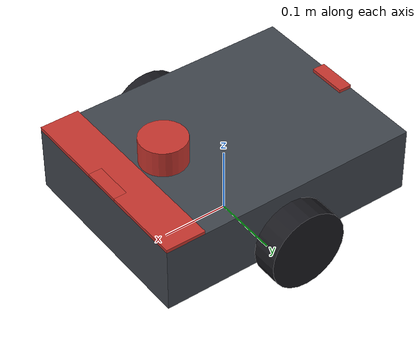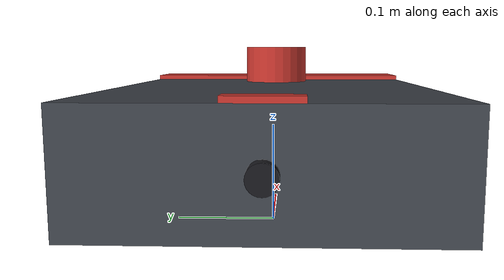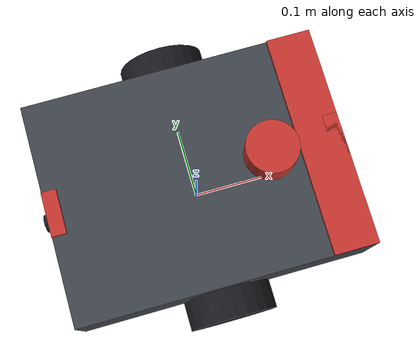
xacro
<?xml version="1.0"?>
<robot xmlns:xacro="http://www.ros.org/wiki/xacro" name="mini_bot">

  <xacro:arg name="namespace" default=""/>
  <xacro:arg name="prefix"    default=""/>
  <xacro:property name="ns"     value="$(arg namespace)"/>
  <xacro:property name="prefix" value="$(arg prefix)"/>
  <!-- Con namespace vacío los topics quedan /scan; con namespace, /robot_a/scan -->
  <xacro:property name="tns" value="${'/' + ns if ns else ''}"/>

  <xacro:include filename="$(find mini_bot)/urdf/inertials.xacro"/>

  <!-- Medidas del robot, en un solo sitio -->
  <xacro:property name="base_x"      value="0.40"/>
  <xacro:property name="base_y"      value="0.30"/>
  <xacro:property name="base_z"      value="0.10"/>
  <xacro:property name="base_mass"   value="5.0"/>
  <xacro:property name="wheel_r"     value="0.06"/>
  <xacro:property name="wheel_l"     value="0.04"/>
  <xacro:property name="wheel_mass"  value="0.5"/>
  <xacro:property name="wheel_sep"   value="0.34"/>
  <xacro:property name="caster_r"    value="0.03"/>

  <material name="body_grey"><color rgba="0.25 0.27 0.30 1.0"/></material>
  <material name="accent_red"><color rgba="0.78 0.21 0.18 1.0"/></material>
  <material name="dark"><color rgba="0.10 0.10 0.12 1.0"/></material>

  <!-- ====================== PREÁMBULO 1: GEOMETRÍA ============================ -->
  <!-- PASOS 1 a 3. Después de cada uno, relanza display.launch.py. -->

  <!-- base_footprint: link vacío a ras de suelo. Es el frame fijo de RViz. -->
  <link name="${prefix}base_footprint"/>

  <!-- base_link: la caja. Patrón de todo link: visual + collision + inertial. -->
  <link name="${prefix}base_link">
    <visual>
      <origin xyz="0 0 0" rpy="0 0 0"/>
      <geometry><box size="${base_x} ${base_y} ${base_z}"/></geometry>
      <material name="body_grey"/>
    </visual>
    <visual>
      <origin xyz="${base_x/2 - 0.03} 0 ${base_z/2 + 0.0025}" rpy="0 0 0"/>
      <geometry><box size="0.06 ${base_y} 0.005"/></geometry>
      <material name="accent_red"/>
    </visual>
    <collision>
      <origin xyz="0 0 0" rpy="0 0 0"/>
      <geometry><box size="${base_x} ${base_y} ${base_z}"/></geometry>
    </collision>
    <xacro:box_inertia m="${base_mass}" x="${base_x}" y="${base_y}" z="${base_z}"/>
  </link>

  <joint name="base_joint" type="fixed">
    <parent link="${prefix}base_footprint"/>
    <child  link="${prefix}base_link"/>
    <!-- PASO 1: con este origen, la caja queda a medias bajo el suelo. El de debajo la eleva
         hasta el eje de las ruedas. -->
    <origin xyz="0 0 ${wheel_r + base_z/2 - 0.02}" rpy="0 0 0"/>
  </joint>

  <!-- PASO 2: las ruedas. Una macro, instanciada dos veces: 'reflect' vale 1 (izquierda)
       o -1 (derecha) y pone cada rueda a un lado con el mismo código. -->
  <xacro:macro name="wheel" params="side reflect">
    <link name="${prefix}${side}_wheel_link">
      <visual>
        <origin xyz="0 0 0" rpy="${pi/2} 0 0"/>
        <geometry><cylinder radius="${wheel_r}" length="${wheel_l}"/></geometry>
        <material name="dark"/>
      </visual>
      <collision>
        <origin xyz="0 0 0" rpy="${pi/2} 0 0"/>
        <geometry><cylinder radius="${wheel_r}" length="${wheel_l}"/></geometry>
      </collision>
      <xacro:cylinder_inertia m="${wheel_mass}" r="${wheel_r}" l="${wheel_l}"/>
    </link>

    <joint name="${side}_wheel_joint" type="continuous">
      <parent link="${prefix}base_link"/>
      <child  link="${prefix}${side}_wheel_link"/>
      <origin xyz="0 ${reflect * wheel_sep/2} ${-base_z/2 + 0.02}" rpy="0 0 0"/>
      <axis xyz="0 1 0"/>
      <dynamics damping="0.05" friction="0.01"/>
    </joint>

    <gazebo reference="${prefix}${side}_wheel_link">
      <mu1>1.0</mu1>
      <mu2>1.0</mu2>
    </gazebo>
  </xacro:macro>

  <xacro:wheel side="left"  reflect="1"/>
  <xacro:wheel side="right" reflect="-1"/>

  <!-- PASO 3: la rueda loca. Una esfera con joint fijo y rozamiento 0 en Gazebo. -->
  <link name="${prefix}caster_link">
    <visual>
      <geometry><sphere radius="${caster_r}"/></geometry>
      <material name="dark"/>
    </visual>
    <collision>
      <geometry><sphere radius="${caster_r}"/></geometry>
    </collision>
    <xacro:sphere_inertia m="0.2" r="${caster_r}"/>
  </link>

  <joint name="caster_joint" type="fixed">
    <parent link="${prefix}base_link"/>
    <child  link="${prefix}caster_link"/>
    <origin xyz="${base_x/2 - 0.05} 0 ${-base_z/2 - caster_r + 0.03}" rpy="0 0 0"/>
  </joint>

  <gazebo reference="${prefix}caster_link">
    <mu1>0.0</mu1>
    <mu2>0.0</mu2>
  </gazebo>

  <!-- ====================== PREÁMBULO 2: SENSORES ============================= -->

  <!-- PASO 7: LiDAR, 180 muestras a 5 Hz entre -90° y +90°, de 0,12 a 8 m. Publica en Gazebo en ${tns}/scan. -->
  <link name="${prefix}lidar_link">
    <visual>
      <geometry><cylinder radius="0.035" length="0.04"/></geometry>
      <material name="accent_red"/>
    </visual>
    <collision>
      <geometry><cylinder radius="0.035" length="0.04"/></geometry>
    </collision>
    <xacro:cylinder_inertia m="0.15" r="0.035" l="0.04"/>
  </link>

  <joint name="lidar_joint" type="fixed">
    <parent link="${prefix}base_link"/>
    <child  link="${prefix}lidar_link"/>
    <origin xyz="0.10 0 ${base_z/2 + 0.02}" rpy="0 0 0"/>
  </joint>

  <gazebo reference="${prefix}lidar_link">
    <sensor name="lidar" type="gpu_lidar">
      <topic>${tns}/scan</topic>
      <gz_frame_id>${prefix}lidar_link</gz_frame_id>
      <update_rate>5</update_rate>
      <always_on>true</always_on>
      <visualize>true</visualize>
      <lidar>
        <scan>
          <horizontal>
            <samples>180</samples>
            <resolution>1</resolution>
            <min_angle>-1.5708</min_angle>
            <max_angle>1.5708</max_angle>
          </horizontal>
        </scan>
        <range>
          <min>0.12</min>
          <max>8.0</max>
          <resolution>0.02</resolution>
        </range>
      </lidar>
    </sensor>
  </gazebo>

  <!-- PASO 8: cámara de 320 × 240 a 10 Hz, en el morro. Publica en Gazebo en ${tns}/camera/image. -->
  <link name="${prefix}camera_link">
    <visual>
      <geometry><box size="0.02 0.06 0.03"/></geometry>
      <material name="accent_red"/>
    </visual>
    <xacro:box_inertia m="0.05" x="0.02" y="0.06" z="0.03"/>
  </link>

  <joint name="camera_joint" type="fixed">
    <parent link="${prefix}base_link"/>
    <child  link="${prefix}camera_link"/>
    <origin xyz="${base_x/2 - 0.01} 0 ${base_z/2 - 0.01}" rpy="0 0 0"/>
  </joint>

  <gazebo reference="${prefix}camera_link">
    <sensor name="camera" type="camera">
      <topic>${tns}/camera/image</topic>
      <gz_frame_id>${prefix}camera_link</gz_frame_id>
      <update_rate>10</update_rate>
      <always_on>true</always_on>
      <camera>
        <horizontal_fov>1.047</horizontal_fov>
        <image>
          <width>320</width>
          <height>240</height>
          <format>R8G8B8</format>
        </image>
        <clip>
          <near>0.1</near>
          <far>15.0</far>
        </clip>
      </camera>
    </sensor>
  </gazebo>

  <!-- ====================== EJERCICIO 2: SENSORES NUEVOS ====================== -->
  <!-- Pega aquí los sensores del ejercicio 2. -->

  <!-- Cámara trasera: 160 × 120 a 5 Hz, mirando hacia atrás (giro de 180° en el joint). -->
  <link name="${prefix}rear_camera_link">
    <visual>
      <geometry><box size="0.02 0.06 0.03"/></geometry>
      <material name="accent_red"/>
    </visual>
    <xacro:box_inertia m="0.05" x="0.02" y="0.06" z="0.03"/>
  </link>

  <joint name="rear_camera_joint" type="fixed">
    <parent link="${prefix}base_link"/>
    <child  link="${prefix}rear_camera_link"/>
    <origin xyz="${-base_x/2 + 0.01} 0 ${base_z/2 - 0.01}" rpy="0 0 ${pi}"/>
  </joint>

  <gazebo reference="${prefix}rear_camera_link">
    <sensor name="rear_camera" type="camera">
      <topic>${tns}/rear_camera/image</topic>
      <gz_frame_id>${prefix}rear_camera_link</gz_frame_id>
      <update_rate>5</update_rate>
      <always_on>true</always_on>
      <camera>
        <horizontal_fov>1.047</horizontal_fov>
        <image>
          <width>160</width>
          <height>120</height>
          <format>R8G8B8</format>
        </image>
        <clip>
          <near>0.05</near>
          <far>10.0</far>
        </clip>
      </camera>
    </sensor>
  </gazebo>

  <link name="${prefix}ultrasound_link">
    <visual>
      <origin xyz="0 0 0" rpy="0 ${pi/2} 0"/>
      <geometry><cylinder radius="0.012" length="0.01"/></geometry>
      <material name="dark"/>
    </visual>
    <xacro:cylinder_inertia m="0.01" r="0.012" l="0.01"/>
  </link>

  <joint name="ultrasound_joint" type="fixed">
    <parent link="${prefix}base_link"/>
    <child  link="${prefix}ultrasound_link"/>
    <origin xyz="${-base_x/2 - 0.005} 0 0" rpy="0 0.067 ${pi}"/>
  </joint>

  <gazebo reference="${prefix}ultrasound_link">
    <sensor name="ultrasound" type="gpu_lidar">
      <topic>${tns}/ultrasound</topic>
      <gz_frame_id>${prefix}ultrasound_link</gz_frame_id>
      <update_rate>10</update_rate>
      <always_on>true</always_on>
      <lidar>
        <scan>
          <horizontal>
            <samples>5</samples>
            <resolution>1</resolution>
            <min_angle>-0.13</min_angle>
            <max_angle>0.13</max_angle>
          </horizontal>
        </scan>
        <range>
          <min>0.02</min>
          <max>3.0</max>
          <resolution>0.01</resolution>
        </range>
      </lidar>
    </sensor>
  </gazebo>

  <!-- ====================== PREÁMBULO 3: ros2_control ========================= -->

</robot>

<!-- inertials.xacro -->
<!-- Macros de inercia. No hace falta tocarlas en el taller: se usan tal cual. -->
<robot xmlns:xacro="http://www.ros.org/wiki/xacro">

  <xacro:macro name="box_inertia" params="m x y z">
    <inertial>
      <mass value="${m}"/>
      <inertia ixx="${m*(y*y+z*z)/12.0}" ixy="0.0" ixz="0.0"
               iyy="${m*(x*x+z*z)/12.0}" iyz="0.0"
               izz="${m*(x*x+y*y)/12.0}"/>
    </inertial>
  </xacro:macro>

  <xacro:macro name="cylinder_inertia" params="m r l">
    <inertial>
      <mass value="${m}"/>
      <inertia ixx="${m*(3*r*r+l*l)/12.0}" ixy="0.0" ixz="0.0"
               iyy="${m*(3*r*r+l*l)/12.0}" iyz="0.0"
               izz="${m*r*r/2.0}"/>
    </inertial>
  </xacro:macro>

  <xacro:macro name="sphere_inertia" params="m r">
    <inertial>
      <mass value="${m}"/>
      <inertia ixx="${2.0*m*r*r/5.0}" ixy="0.0" ixz="0.0"
               iyy="${2.0*m*r*r/5.0}" iyz="0.0"
               izz="${2.0*m*r*r/5.0}"/>
    </inertial>
  </xacro:macro>

</robot>
